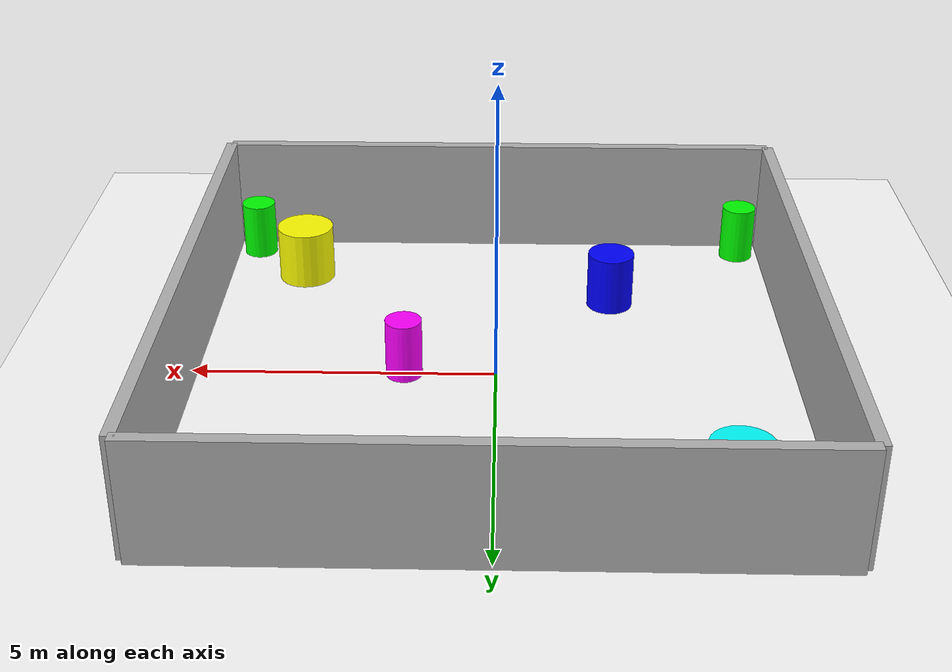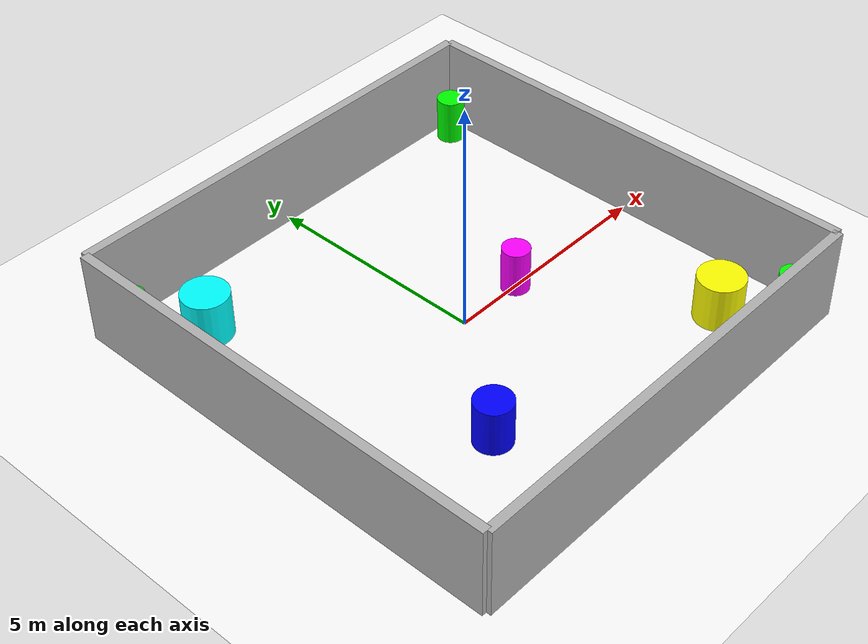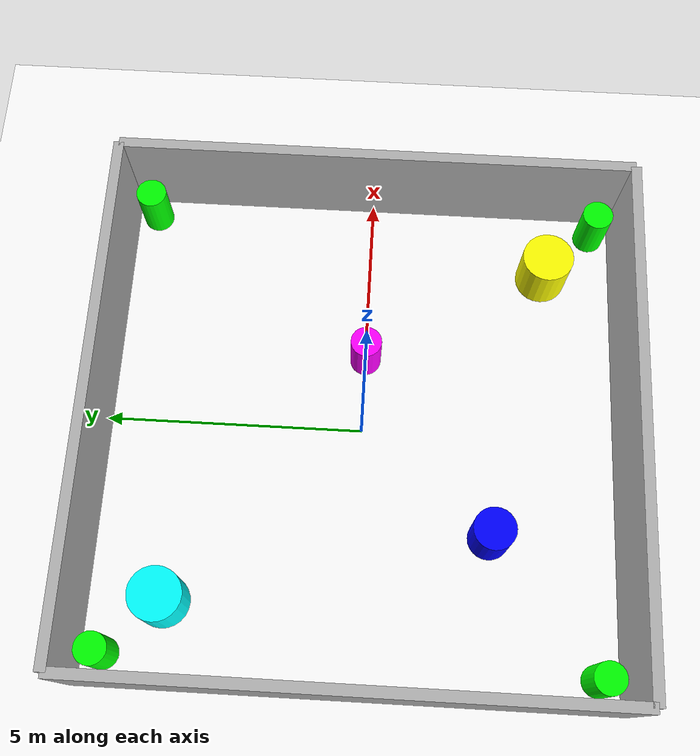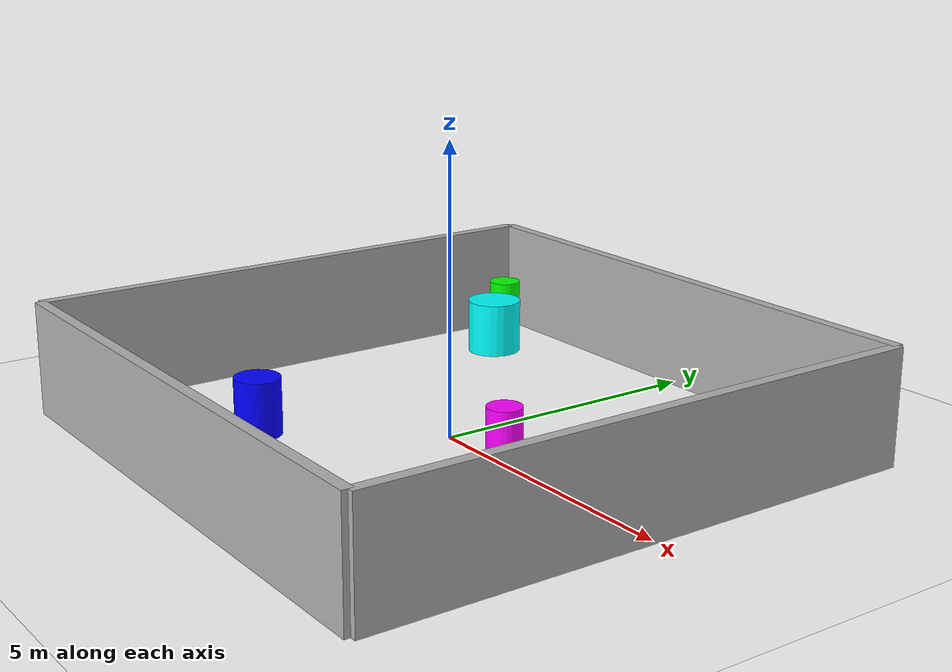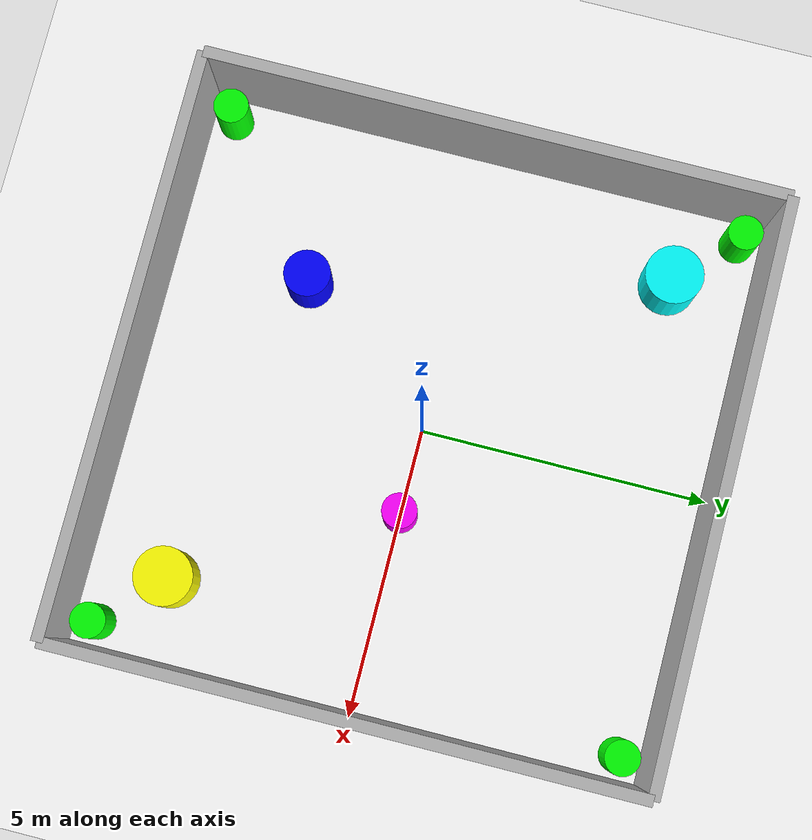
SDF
<?xml version="1.0"?>
<sdf version="1.8">
  <world name="bright_walled_garden">

    <plugin filename="gz-sim-physics-system" name="gz::sim::systems::Physics"/>
    <plugin filename="gz-sim-user-commands-system" name="gz::sim::systems::UserCommands"/>
    <plugin filename="gz-sim-scene-broadcaster-system" name="gz::sim::systems::SceneBroadcaster"/>
    <plugin filename="gz-sim-sensors-system" name="gz::sim::systems::Sensors">
      <render_engine>ogre2</render_engine>
    </plugin>

    <scene>
      <ambient>0.5 0.5 0.5 1.0</ambient>
      <grid>false</grid>
    </scene>
    <gravity>0 0 -9.81</gravity>

    <light name="sun" type="directional">
      <pose>0 0 10 0 0 0</pose>
      <diffuse>0.8 0.8 0.8 1</diffuse>
      <specular>0.2 0.2 0.2 1</specular>
      <direction>-0.5 0.1 -0.9</direction>
      <cast_shadows>false</cast_shadows>
    </light>

    <model name="ground_plane">
      <static>true</static>
      <link name="link">
        <collision name="collision">
          <geometry><plane><normal>0 0 1</normal><size>100 100</size></plane></geometry>
        </collision>
        <visual name="visual">
          <geometry><plane><normal>0 0 1</normal><size>100 100</size></plane></geometry>
          <material>
            <ambient>1 1 1 1</ambient>
            <diffuse>1 1 1 1</diffuse>
            <specular>0.1 0.1 0.1 1</specular>
          </material>
        </visual>
      </link>
    </model>

    <model name="wall_north">
      <pose>0 5 1 0 0 0</pose> <static>true</static>
      <link name="link">
        <visual name="v"><geometry><box><size>10 0.2 2</size></box></geometry>
        <material><diffuse>0.7 0.7 0.7 1</diffuse></material></visual>
        <collision name="c"><geometry><box><size>10 0.2 2</size></box></geometry></collision>
      </link>
    </model>

    <model name="wall_south">
      <pose>0 -5 1 0 0 0</pose> <static>true</static>
      <link name="link">
        <visual name="v"><geometry><box><size>10 0.2 2</size></box></geometry>
        <material><diffuse>0.7 0.7 0.7 1</diffuse></material></visual>
        <collision name="c"><geometry><box><size>10 0.2 2</size></box></geometry></collision>
      </link>
    </model>

    <model name="wall_east">
      <pose>5 0 1 0 0 0</pose> <static>true</static>
      <link name="link">
        <visual name="v"><geometry><box><size>0.2 10 2</size></box></geometry>
        <material><diffuse>0.7 0.7 0.7 1</diffuse></material></visual>
        <collision name="c"><geometry><box><size>0.2 10 2</size></box></geometry></collision>
      </link>
    </model>

    <model name="wall_west">
      <pose>-5 0 1 0 0 0</pose> <static>true</static>
      <link name="link">
        <visual name="v"><geometry><box><size>0.2 10 2</size></box></geometry>
        <material><diffuse>0.7 0.7 0.7 1</diffuse></material></visual>
        <collision name="c"><geometry><box><size>0.2 10 2</size></box></geometry></collision>
      </link>
    </model>

    <model name="plant_ne">
      <pose>4.5 4.5 0.5 0 0 0</pose> <static>true</static>
      <link name="link">
        <visual name="v"><geometry><cylinder><radius>0.3</radius><length>1</length></cylinder></geometry>
        <material><diffuse>0 1 0 1</diffuse></material> </visual>
        <collision name="c"><geometry><cylinder><radius>0.3</radius><length>1</length></cylinder></geometry></collision>
      </link>
    </model>

    <model name="plant_nw">
      <pose>-4.5 4.5 0.5 0 0 0</pose> <static>true</static>
      <link name="link">
        <visual name="v"><geometry><cylinder><radius>0.3</radius><length>1</length></cylinder></geometry>
        <material><diffuse>0 1 0 1</diffuse></material> </visual>
        <collision name="c"><geometry><cylinder><radius>0.3</radius><length>1</length></cylinder></geometry></collision>
      </link>
    </model>

    <model name="plant_se">
      <pose>4.5 -4.5 0.5 0 0 0</pose> <static>true</static>
      <link name="link">
        <visual name="v"><geometry><cylinder><radius>0.3</radius><length>1</length></cylinder></geometry>
        <material><diffuse>0 1 0 1</diffuse></material> </visual>
        <collision name="c"><geometry><cylinder><radius>0.3</radius><length>1</length></cylinder></geometry></collision>
      </link>
    </model>

    <model name="plant_sw">
      <pose>-4.5 -4.5 0.5 0 0 0</pose> <static>true</static>
      <link name="link">
        <visual name="v"><geometry><cylinder><radius>0.3</radius><length>1</length></cylinder></geometry>
        <material><diffuse>0 1 0 1</diffuse></material> </visual>
        <collision name="c"><geometry><cylinder><radius>0.3</radius><length>1</length></cylinder></geometry></collision>
      </link>
    </model>

    <model name="left_circle_obstacle">
      <pose>-3.5 3.5 0.5 0 0 0</pose> <static>true</static>
      <link name="link">
        <visual name="visual">
          <geometry><cylinder><radius>0.5</radius><length>1</length></cylinder></geometry>
          <material><diffuse>0 1 1 1</diffuse></material> </visual>
        <collision name="collision">
          <geometry><cylinder><radius>0.5</radius><length>1</length></cylinder></geometry>
        </collision>
      </link>
    </model>

    <model name="cylinder_close">
      <pose>1.5 0.0 0.5 0 0 0</pose> <static>true</static>
      <link name="link">
        <visual name="visual">
          <geometry><cylinder><radius>0.3</radius><length>1</length></cylinder></geometry>
          <material><diffuse>1 0 1 1</diffuse></material> </visual>
        <collision name="collision">
          <geometry><cylinder><radius>0.3</radius><length>1</length></cylinder></geometry>
        </collision>
      </link>
    </model>

    <model name="cylinder_mid">
      <pose>-2.0 -2.5 0.5 0 0 0</pose> <static>true</static>
      <link name="link">
        <visual name="visual">
          <geometry><cylinder><radius>0.4</radius><length>1</length></cylinder></geometry>
          <material><diffuse>0 0 1 1</diffuse></material> </visual>
        <collision name="collision">
          <geometry><cylinder><radius>0.4</radius><length>1</length></cylinder></geometry>
        </collision>
      </link>
    </model>

    <model name="cylinder_far">
      <pose>3.5 -3.5 0.5 0 0 0</pose> <static>true</static>
      <link name="link">
        <visual name="visual">
          <geometry><cylinder><radius>0.5</radius><length>1</length></cylinder></geometry>
          <material><diffuse>1 1 0 1</diffuse></material> </visual>
        <collision name="collision">
          <geometry><cylinder><radius>0.5</radius><length>1</length></cylinder></geometry>
        </collision>
      </link>
    </model>

  </world>
</sdf>
